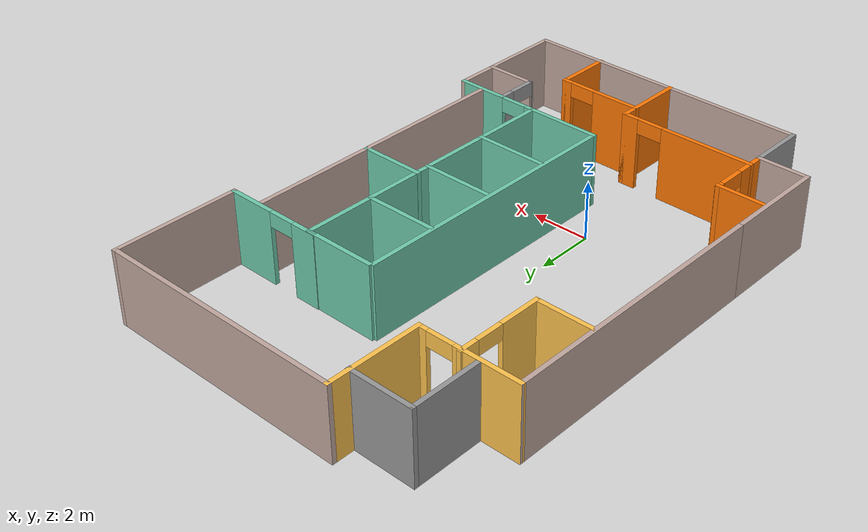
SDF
<?xml version='1.0'?>
<sdf version='1.7'>
  <model name='mybuilding'>
    <pose>0.878662 3.08042 0 0 -0 0</pose>
    <link name='Wall_123'>
      <collision name='Wall_123_Collision'>
        <geometry>
          <box>
            <size>5.25 0.15 2.5</size>
          </box>
        </geometry>
        <pose>0 0 1.25 0 -0 0</pose>
      </collision>
      <visual name='Wall_123_Visual'>
        <pose>0 0 1.25 0 -0 0</pose>
        <geometry>
          <box>
            <size>5.25 0.15 2.5</size>
          </box>
        </geometry>
        <material>
          <script>
            <uri>file://media/materials/scripts/gazebo.material</uri>
            <name>Gazebo/Grey</name>
          </script>
          <ambient>0.760784 0.662745 0.627451 1</ambient>
        </material>
        <meta>
          <layer>0</layer>
        </meta>
      </visual>
      <pose>4.79444 -2.06703 0 0 -0 1.5708</pose>
    </link>
    <link name='Wall_125'>
      <collision name='Wall_125_Collision'>
        <geometry>
          <box>
            <size>2.25 0.15 2.5</size>
          </box>
        </geometry>
        <pose>0 0 1.25 0 -0 0</pose>
      </collision>
      <visual name='Wall_125_Visual'>
        <pose>0 0 1.25 0 -0 0</pose>
        <geometry>
          <box>
            <size>2.25 0.15 2.5</size>
          </box>
        </geometry>
        <material>
          <script>
            <uri>file://media/materials/scripts/gazebo.material</uri>
            <name>Gazebo/Grey</name>
          </script>
          <ambient>0.435294 0.796078 0.67451 1</ambient>
        </material>
        <meta>
          <layer>0</layer>
        </meta>
      </visual>
      <pose>3.74444 0.482967 0 0 -0 3.14159</pose>
    </link>
    <link name='Wall_127'>
      <collision name='Wall_127_Collision'>
        <geometry>
          <box>
            <size>4.25 0.15 2.5</size>
          </box>
        </geometry>
        <pose>0 0 1.25 0 -0 0</pose>
      </collision>
      <visual name='Wall_127_Visual'>
        <pose>0 0 1.25 0 -0 0</pose>
        <geometry>
          <box>
            <size>4.25 0.15 2.5</size>
          </box>
        </geometry>
        <material>
          <script>
            <uri>file://media/materials/scripts/gazebo.material</uri>
            <name>Gazebo/Grey</name>
          </script>
          <ambient>0.760784 0.662745 0.627451 1</ambient>
        </material>
        <meta>
          <layer>0</layer>
        </meta>
      </visual>
      <pose>4.79444 2.53297 0 0 -0 1.5708</pose>
    </link>
    <link name='Wall_129'>
      <collision name='Wall_129_Collision'>
        <geometry>
          <box>
            <size>4.25 0.15 2.5</size>
          </box>
        </geometry>
        <pose>0 0 1.25 0 -0 0</pose>
      </collision>
      <visual name='Wall_129_Visual'>
        <pose>0 0 1.25 0 -0 0</pose>
        <geometry>
          <box>
            <size>4.25 0.15 2.5</size>
          </box>
        </geometry>
        <material>
          <script>
            <uri>file://media/materials/scripts/gazebo.material</uri>
            <name>Gazebo/Grey</name>
          </script>
          <ambient>0.760784 0.662745 0.627451 1</ambient>
        </material>
        <meta>
          <layer>0</layer>
        </meta>
      </visual>
      <pose>5.86525 6.78658 0 0 -0 1.5708</pose>
    </link>
    <link name='Wall_130'>
      <collision name='Wall_130_Collision'>
        <geometry>
          <box>
            <size>8.5 0.15 2.5</size>
          </box>
        </geometry>
        <pose>0 0 1.25 0 -0 0</pose>
      </collision>
      <visual name='Wall_130_Visual'>
        <pose>0 0 1.25 0 -0 0</pose>
        <geometry>
          <box>
            <size>8.5 0.15 2.5</size>
          </box>
        </geometry>
        <material>
          <script>
            <uri>file://media/materials/scripts/gazebo.material</uri>
            <name>Gazebo/Grey</name>
          </script>
          <ambient>0.760784 0.662745 0.627451 1</ambient>
        </material>
        <meta>
          <layer>0</layer>
        </meta>
      </visual>
      <pose>1.69025 8.83658 0 0 -0 3.14159</pose>
    </link>
    <link name='Wall_131'>
      <collision name='Wall_131_Collision'>
        <geometry>
          <box>
            <size>3.25 0.15 2.5</size>
          </box>
        </geometry>
        <pose>0 0 1.25 0 -0 0</pose>
      </collision>
      <visual name='Wall_131_Visual'>
        <pose>0 0 1.25 0 -0 0</pose>
        <geometry>
          <box>
            <size>3.25 0.15 2.5</size>
          </box>
        </geometry>
        <material>
          <script>
            <uri>file://media/materials/scripts/gazebo.material</uri>
            <name>Gazebo/Grey</name>
          </script>
          <ambient>1 0.764706 0.305882 1</ambient>
        </material>
        <meta>
          <layer>0</layer>
        </meta>
      </visual>
      <pose>-2.48475 7.28658 0 0 -0 -1.5708</pose>
    </link>
    <link name='Wall_136'>
      <collision name='Wall_136_Collision'>
        <geometry>
          <box>
            <size>9.49958 0.15 2.5</size>
          </box>
        </geometry>
        <pose>0 0 1.25 0 -0 0</pose>
      </collision>
      <visual name='Wall_136_Visual'>
        <pose>0 0 1.25 0 -0 0</pose>
        <geometry>
          <box>
            <size>9.49958 0.15 2.5</size>
          </box>
        </geometry>
        <material>
          <script>
            <uri>file://media/materials/scripts/gazebo.material</uri>
            <name>Gazebo/Grey</name>
          </script>
          <ambient>0.760784 0.662745 0.627451 1</ambient>
        </material>
        <meta>
          <layer>0</layer>
        </meta>
      </visual>
      <pose>-5.86518 1.06458 0 0 -0 1.5708</pose>
    </link>
    <link name='Wall_138'>
      <pose>-4.17497 5.73808 0 0 -0 3.14071</pose>
      <visual name='Wall_138_Visual_0'>
        <pose>-1.57735 0 1.25 0 -0 0</pose>
        <geometry>
          <box>
            <size>0.375734 0.15 2.5</size>
          </box>
        </geometry>
        <material>
          <script>
            <uri>file://media/materials/scripts/gazebo.material</uri>
            <name>Gazebo/Grey</name>
          </script>
          <ambient>1 0.764706 0.305882 1</ambient>
        </material>
        <meta>
          <layer>0</layer>
        </meta>
      </visual>
      <collision name='Wall_138_Collision_0'>
        <geometry>
          <box>
            <size>0.375734 0.15 2.5</size>
          </box>
        </geometry>
        <pose>-1.57735 0 1.25 0 -0 0</pose>
      </collision>
      <visual name='Wall_138_Visual_1'>
        <pose>0.637867 0 1.25 0 -0 0</pose>
        <geometry>
          <box>
            <size>2.2547 0.15 2.5</size>
          </box>
        </geometry>
        <material>
          <script>
            <uri>file://media/materials/scripts/gazebo.material</uri>
            <name>Gazebo/Grey</name>
          </script>
          <ambient>1 0.764706 0.305882 1</ambient>
        </material>
        <meta>
          <layer>0</layer>
        </meta>
      </visual>
      <collision name='Wall_138_Collision_1'>
        <geometry>
          <box>
            <size>2.2547 0.15 2.5</size>
          </box>
        </geometry>
        <pose>0.637867 0 1.25 0 -0 0</pose>
      </collision>
      <visual name='Wall_138_Visual_2'>
        <pose>-0.939484 0 2.25 0 -0 0</pose>
        <geometry>
          <box>
            <size>0.9 0.15 0.5</size>
          </box>
        </geometry>
        <material>
          <script>
            <uri>file://media/materials/scripts/gazebo.material</uri>
            <name>Gazebo/Grey</name>
          </script>
          <ambient>1 0.764706 0.305882 1</ambient>
        </material>
        <meta>
          <layer>0</layer>
        </meta>
      </visual>
      <collision name='Wall_138_Collision_2'>
        <geometry>
          <box>
            <size>0.9 0.15 0.5</size>
          </box>
        </geometry>
        <pose>-0.939484 0 2.25 0 -0 0</pose>
      </collision>
    </link>
    <link name='Wall_141'>
      <collision name='Wall_141_Collision'>
        <geometry>
          <box>
            <size>2.25 0.15 2.5</size>
          </box>
        </geometry>
        <pose>0 0 1.25 0 -0 0</pose>
      </collision>
      <visual name='Wall_141_Visual'>
        <pose>0 0 1.25 0 -0 0</pose>
        <geometry>
          <box>
            <size>2.25 0.15 2.5</size>
          </box>
        </geometry>
        <material>
          <script>
            <uri>file://media/materials/scripts/gazebo.material</uri>
            <name>Gazebo/Grey</name>
          </script>
          <ambient>1 1 1 1</ambient>
        </material>
        <meta>
          <layer>0</layer>
        </meta>
      </visual>
      <pose>-3.51661 8.10127 0 0 -0 3.14159</pose>
    </link>
    <link name='Wall_142'>
      <collision name='Wall_142_Collision'>
        <geometry>
          <box>
            <size>2.5 0.15 2.5</size>
          </box>
        </geometry>
        <pose>0 0 1.25 0 -0 0</pose>
      </collision>
      <visual name='Wall_142_Visual'>
        <pose>0 0 1.25 0 -0 0</pose>
        <geometry>
          <box>
            <size>2.5 0.15 2.5</size>
          </box>
        </geometry>
        <material>
          <script>
            <uri>file://media/materials/scripts/gazebo.material</uri>
            <name>Gazebo/Grey</name>
          </script>
          <ambient>1 1 1 1</ambient>
        </material>
        <meta>
          <layer>0</layer>
        </meta>
      </visual>
      <pose>-4.56661 6.92627 0 0 -0 -1.5708</pose>
    </link>
    <link name='Wall_144'>
      <pose>-3.95132 4.36352 0 0 -0 -1.5708</pose>
      <visual name='Wall_144_Visual_0'>
        <pose>-1.17446 0 1.25 0 -0 0</pose>
        <geometry>
          <box>
            <size>0.651089 0.15 2.5</size>
          </box>
        </geometry>
        <material>
          <script>
            <uri>file://media/materials/scripts/gazebo.material</uri>
            <name>Gazebo/Grey</name>
          </script>
          <ambient>1 0.764706 0.305882 1</ambient>
        </material>
        <meta>
          <layer>0</layer>
        </meta>
      </visual>
      <collision name='Wall_144_Collision_0'>
        <geometry>
          <box>
            <size>0.651089 0.15 2.5</size>
          </box>
        </geometry>
        <pose>-1.17446 0 1.25 0 -0 0</pose>
      </collision>
      <visual name='Wall_144_Visual_1'>
        <pose>0.775545 0 1.25 0 -0 0</pose>
        <geometry>
          <box>
            <size>1.44891 0.15 2.5</size>
          </box>
        </geometry>
        <material>
          <script>
            <uri>file://media/materials/scripts/gazebo.material</uri>
            <name>Gazebo/Grey</name>
          </script>
          <ambient>1 0.764706 0.305882 1</ambient>
        </material>
        <meta>
          <layer>0</layer>
        </meta>
      </visual>
      <collision name='Wall_144_Collision_1'>
        <geometry>
          <box>
            <size>1.44891 0.15 2.5</size>
          </box>
        </geometry>
        <pose>0.775545 0 1.25 0 -0 0</pose>
      </collision>
      <visual name='Wall_144_Visual_2'>
        <pose>-0.398911 0 2.25 0 -0 0</pose>
        <geometry>
          <box>
            <size>0.9 0.15 0.5</size>
          </box>
        </geometry>
        <material>
          <script>
            <uri>file://media/materials/scripts/gazebo.material</uri>
            <name>Gazebo/Grey</name>
          </script>
          <ambient>1 0.764706 0.305882 1</ambient>
        </material>
        <meta>
          <layer>0</layer>
        </meta>
      </visual>
      <collision name='Wall_144_Collision_2'>
        <geometry>
          <box>
            <size>0.9 0.15 0.5</size>
          </box>
        </geometry>
        <pose>-0.398911 0 2.25 0 -0 0</pose>
      </collision>
    </link>
    <link name='Wall_145'>
      <collision name='Wall_145_Collision'>
        <geometry>
          <box>
            <size>2 0.15 2.5</size>
          </box>
        </geometry>
        <pose>0 0 1.25 0 -0 0</pose>
      </collision>
      <visual name='Wall_145_Visual'>
        <pose>0 0 1.25 0 -0 0</pose>
        <geometry>
          <box>
            <size>2 0.15 2.5</size>
          </box>
        </geometry>
        <material>
          <script>
            <uri>file://media/materials/scripts/gazebo.material</uri>
            <name>Gazebo/Grey</name>
          </script>
          <ambient>1 0.764706 0.305882 1</ambient>
        </material>
        <meta>
          <layer>0</layer>
        </meta>
      </visual>
      <pose>-4.87632 2.93852 0 0 -0 3.14159</pose>
    </link>
    <link name='Wall_27'>
      <collision name='Wall_27_Collision'>
        <geometry>
          <box>
            <size>1.9915 0.15 2.5</size>
          </box>
        </geometry>
        <pose>0 0 1.25 0 -0 0</pose>
      </collision>
      <visual name='Wall_27_Visual'>
        <pose>0 0 1.25 0 -0 0</pose>
        <geometry>
          <box>
            <size>1.9915 0.15 2.5</size>
          </box>
        </geometry>
        <material>
          <script>
            <uri>file://media/materials/scripts/gazebo.material</uri>
            <name>Gazebo/Grey</name>
          </script>
          <ambient>1 1 1 1</ambient>
        </material>
        <meta>
          <layer>0</layer>
        </meta>
      </visual>
      <pose>-4.23475 -7.88117 0 0 -0 -1.5708</pose>
    </link>
    <link name='Wall_36'>
      <pose>-4.23475 -5.89742 0 0 -0 1.5708</pose>
      <visual name='Wall_36_Visual_0'>
        <pose>-0.580632 0 1.25 0 -0 0</pose>
        <geometry>
          <box>
            <size>1.11474 0.15 2.5</size>
          </box>
        </geometry>
        <material>
          <script>
            <uri>file://media/materials/scripts/gazebo.material</uri>
            <name>Gazebo/Grey</name>
          </script>
          <ambient>0.996078 0.47451 0.0196078 1</ambient>
        </material>
        <meta>
          <layer>0</layer>
        </meta>
      </visual>
      <collision name='Wall_36_Collision_0'>
        <geometry>
          <box>
            <size>1.11474 0.15 2.5</size>
          </box>
        </geometry>
        <pose>-0.580632 0 1.25 0 -0 0</pose>
      </collision>
      <visual name='Wall_36_Visual_1'>
        <pose>1.00737 0 1.25 0 -0 0</pose>
        <geometry>
          <box>
            <size>0.261265 0.15 2.5</size>
          </box>
        </geometry>
        <material>
          <script>
            <uri>file://media/materials/scripts/gazebo.material</uri>
            <name>Gazebo/Grey</name>
          </script>
          <ambient>0.996078 0.47451 0.0196078 1</ambient>
        </material>
        <meta>
          <layer>0</layer>
        </meta>
      </visual>
      <collision name='Wall_36_Collision_1'>
        <geometry>
          <box>
            <size>0.261265 0.15 2.5</size>
          </box>
        </geometry>
        <pose>1.00737 0 1.25 0 -0 0</pose>
      </collision>
      <visual name='Wall_36_Visual_2'>
        <pose>0.426735 0 2.25 0 -0 0</pose>
        <geometry>
          <box>
            <size>0.9 0.15 0.5</size>
          </box>
        </geometry>
        <material>
          <script>
            <uri>file://media/materials/scripts/gazebo.material</uri>
            <name>Gazebo/Grey</name>
          </script>
          <ambient>0.996078 0.47451 0.0196078 1</ambient>
        </material>
        <meta>
          <layer>0</layer>
        </meta>
      </visual>
      <collision name='Wall_36_Collision_2'>
        <geometry>
          <box>
            <size>0.9 0.15 0.5</size>
          </box>
        </geometry>
        <pose>0.426735 0 2.25 0 -0 0</pose>
      </collision>
    </link>
    <link name='Wall_41'>
      <collision name='Wall_41_Collision'>
        <geometry>
          <box>
            <size>1.75 0.15 2.5</size>
          </box>
        </geometry>
        <pose>0 0 1.25 0 -0 0</pose>
      </collision>
      <visual name='Wall_41_Visual'>
        <pose>0 0 1.25 0 -0 0</pose>
        <geometry>
          <box>
            <size>1.75 0.15 2.5</size>
          </box>
        </geometry>
        <material>
          <script>
            <uri>file://media/materials/scripts/gazebo.material</uri>
            <name>Gazebo/Grey</name>
          </script>
          <ambient>0.996078 0.47451 0.0196078 1</ambient>
        </material>
        <meta>
          <layer>0</layer>
        </meta>
      </visual>
      <pose>-5.02325 -4.83442 0 0 -0 3.14159</pose>
    </link>
    <link name='Wall_43'>
      <collision name='Wall_43_Collision'>
        <geometry>
          <box>
            <size>10 0.15 2.5</size>
          </box>
        </geometry>
        <pose>0 0 1.25 0 -0 0</pose>
      </collision>
      <visual name='Wall_43_Visual'>
        <pose>0 0 1.25 0 -0 0</pose>
        <geometry>
          <box>
            <size>10 0.15 2.5</size>
          </box>
        </geometry>
        <material>
          <script>
            <uri>file://media/materials/scripts/gazebo.material</uri>
            <name>Gazebo/Grey</name>
          </script>
          <ambient>0.760784 0.662745 0.627451 1</ambient>
        </material>
        <meta>
          <layer>0</layer>
        </meta>
      </visual>
      <pose>0.690251 -8.81342 0 0 -0 0</pose>
    </link>
    <link name='Wall_47'>
      <pose>-1.93659 -6.46908 0 0 -0 0</pose>
      <visual name='Wall_47_Visual_0'>
        <pose>-0.7455 0 1.25 0 -0 0</pose>
        <geometry>
          <box>
            <size>3.259 0.15 2.5</size>
          </box>
        </geometry>
        <material>
          <script>
            <uri>file://media/materials/scripts/gazebo.material</uri>
            <name>Gazebo/Grey</name>
          </script>
          <ambient>0.996078 0.47451 0.0196078 1</ambient>
        </material>
        <meta>
          <layer>0</layer>
        </meta>
      </visual>
      <collision name='Wall_47_Collision_0'>
        <geometry>
          <box>
            <size>3.259 0.15 2.5</size>
          </box>
        </geometry>
        <pose>-0.7455 0 1.25 0 -0 0</pose>
      </collision>
      <visual name='Wall_47_Visual_1'>
        <pose>2.0795 0 1.25 0 -0 0</pose>
        <geometry>
          <box>
            <size>0.591 0.15 2.5</size>
          </box>
        </geometry>
        <material>
          <script>
            <uri>file://media/materials/scripts/gazebo.material</uri>
            <name>Gazebo/Grey</name>
          </script>
          <ambient>0.996078 0.47451 0.0196078 1</ambient>
        </material>
        <meta>
          <layer>0</layer>
        </meta>
      </visual>
      <collision name='Wall_47_Collision_1'>
        <geometry>
          <box>
            <size>0.591 0.15 2.5</size>
          </box>
        </geometry>
        <pose>2.0795 0 1.25 0 -0 0</pose>
      </collision>
      <visual name='Wall_47_Visual_2'>
        <pose>1.334 0 2.25 0 -0 0</pose>
        <geometry>
          <box>
            <size>0.9 0.15 0.5</size>
          </box>
        </geometry>
        <material>
          <script>
            <uri>file://media/materials/scripts/gazebo.material</uri>
            <name>Gazebo/Grey</name>
          </script>
          <ambient>0.996078 0.47451 0.0196078 1</ambient>
        </material>
        <meta>
          <layer>0</layer>
        </meta>
      </visual>
      <collision name='Wall_47_Collision_2'>
        <geometry>
          <box>
            <size>0.9 0.15 0.5</size>
          </box>
        </geometry>
        <pose>1.334 0 2.25 0 -0 0</pose>
      </collision>
    </link>
    <link name='Wall_48'>
      <collision name='Wall_48_Collision'>
        <geometry>
          <box>
            <size>2.5 0.15 2.5</size>
          </box>
        </geometry>
        <pose>0 0 1.25 0 -0 0</pose>
      </collision>
      <visual name='Wall_48_Visual'>
        <pose>0 0 1.25 0 -0 0</pose>
        <geometry>
          <box>
            <size>2.5 0.15 2.5</size>
          </box>
        </geometry>
        <material>
          <script>
            <uri>file://media/materials/scripts/gazebo.material</uri>
            <name>Gazebo/Grey</name>
          </script>
          <ambient>0.996078 0.47451 0.0196078 1</ambient>
        </material>
        <meta>
          <layer>0</layer>
        </meta>
      </visual>
      <pose>0.36341 -7.64408 0 0 -0 -1.5708</pose>
    </link>
    <link name='Wall_52'>
      <pose>1.78841 -6.98658 0 0 -0 0</pose>
      <visual name='Wall_52_Visual_0'>
        <pose>-0.63525 0 1.25 0 -0 0</pose>
        <geometry>
          <box>
            <size>1.7295 0.15 2.5</size>
          </box>
        </geometry>
        <material>
          <script>
            <uri>file://media/materials/scripts/gazebo.material</uri>
            <name>Gazebo/Grey</name>
          </script>
          <ambient>0.996078 0.47451 0.0196078 1</ambient>
        </material>
        <meta>
          <layer>0</layer>
        </meta>
      </visual>
      <collision name='Wall_52_Collision_0'>
        <geometry>
          <box>
            <size>1.7295 0.15 2.5</size>
          </box>
        </geometry>
        <pose>-0.63525 0 1.25 0 -0 0</pose>
      </collision>
      <visual name='Wall_52_Visual_1'>
        <pose>1.31475 0 1.25 0 -0 0</pose>
        <geometry>
          <box>
            <size>0.3705 0.15 2.5</size>
          </box>
        </geometry>
        <material>
          <script>
            <uri>file://media/materials/scripts/gazebo.material</uri>
            <name>Gazebo/Grey</name>
          </script>
          <ambient>0.996078 0.47451 0.0196078 1</ambient>
        </material>
        <meta>
          <layer>0</layer>
        </meta>
      </visual>
      <collision name='Wall_52_Collision_1'>
        <geometry>
          <box>
            <size>0.3705 0.15 2.5</size>
          </box>
        </geometry>
        <pose>1.31475 0 1.25 0 -0 0</pose>
      </collision>
      <visual name='Wall_52_Visual_2'>
        <pose>0.6795 0 2.25 0 -0 0</pose>
        <geometry>
          <box>
            <size>0.9 0.15 0.5</size>
          </box>
        </geometry>
        <material>
          <script>
            <uri>file://media/materials/scripts/gazebo.material</uri>
            <name>Gazebo/Grey</name>
          </script>
          <ambient>0.996078 0.47451 0.0196078 1</ambient>
        </material>
        <meta>
          <layer>0</layer>
        </meta>
      </visual>
      <collision name='Wall_52_Collision_2'>
        <geometry>
          <box>
            <size>0.9 0.15 0.5</size>
          </box>
        </geometry>
        <pose>0.6795 0 2.25 0 -0 0</pose>
      </collision>
    </link>
    <link name='Wall_53'>
      <collision name='Wall_53_Collision'>
        <geometry>
          <box>
            <size>2 0.15 2.5</size>
          </box>
        </geometry>
        <pose>0 0 1.25 0 -0 0</pose>
      </collision>
      <visual name='Wall_53_Visual'>
        <pose>0 0 1.25 0 -0 0</pose>
        <geometry>
          <box>
            <size>2 0.15 2.5</size>
          </box>
        </geometry>
        <material>
          <script>
            <uri>file://media/materials/scripts/gazebo.material</uri>
            <name>Gazebo/Grey</name>
          </script>
          <ambient>0.996078 0.47451 0.0196078 1</ambient>
        </material>
        <meta>
          <layer>0</layer>
        </meta>
      </visual>
      <pose>3.21341 -7.91158 0 0 -0 -1.5708</pose>
    </link>
    <link name='Wall_55'>
      <collision name='Wall_55_Collision'>
        <geometry>
          <box>
            <size>4.25 0.15 2.5</size>
          </box>
        </geometry>
        <pose>0 0 1.25 0 -0 0</pose>
      </collision>
      <visual name='Wall_55_Visual'>
        <pose>0 0 1.25 0 -0 0</pose>
        <geometry>
          <box>
            <size>4.25 0.15 2.5</size>
          </box>
        </geometry>
        <material>
          <script>
            <uri>file://media/materials/scripts/gazebo.material</uri>
            <name>Gazebo/Grey</name>
          </script>
          <ambient>0.760784 0.662745 0.627451 1</ambient>
        </material>
        <meta>
          <layer>0</layer>
        </meta>
      </visual>
      <pose>5.61525 -6.76342 0 0 -0 1.5708</pose>
    </link>
    <link name='Wall_56'>
      <pose>2.94025 -4.71342 0 0 -0 3.14159</pose>
      <visual name='Wall_56_Visual_0'>
        <pose>-1.85364 0 1.25 0 -0 0</pose>
        <geometry>
          <box>
            <size>1.79272 0.15 2.5</size>
          </box>
        </geometry>
        <material>
          <script>
            <uri>file://media/materials/scripts/gazebo.material</uri>
            <name>Gazebo/Grey</name>
          </script>
          <ambient>0.435294 0.796078 0.67451 1</ambient>
        </material>
        <meta>
          <layer>0</layer>
        </meta>
      </visual>
      <collision name='Wall_56_Collision_0'>
        <geometry>
          <box>
            <size>1.79272 0.15 2.5</size>
          </box>
        </geometry>
        <pose>-1.85364 0 1.25 0 -0 0</pose>
      </collision>
      <visual name='Wall_56_Visual_1'>
        <pose>1.34636 0 1.25 0 -0 0</pose>
        <geometry>
          <box>
            <size>2.80728 0.15 2.5</size>
          </box>
        </geometry>
        <material>
          <script>
            <uri>file://media/materials/scripts/gazebo.material</uri>
            <name>Gazebo/Grey</name>
          </script>
          <ambient>0.435294 0.796078 0.67451 1</ambient>
        </material>
        <meta>
          <layer>0</layer>
        </meta>
      </visual>
      <collision name='Wall_56_Collision_1'>
        <geometry>
          <box>
            <size>2.80728 0.15 2.5</size>
          </box>
        </geometry>
        <pose>1.34636 0 1.25 0 -0 0</pose>
      </collision>
      <visual name='Wall_56_Visual_2'>
        <pose>-0.507283 0 2.25 0 -0 0</pose>
        <geometry>
          <box>
            <size>0.9 0.15 0.5</size>
          </box>
        </geometry>
        <material>
          <script>
            <uri>file://media/materials/scripts/gazebo.material</uri>
            <name>Gazebo/Grey</name>
          </script>
          <ambient>0.435294 0.796078 0.67451 1</ambient>
        </material>
        <meta>
          <layer>0</layer>
        </meta>
      </visual>
      <collision name='Wall_56_Collision_2'>
        <geometry>
          <box>
            <size>0.9 0.15 0.5</size>
          </box>
        </geometry>
        <pose>-0.507283 0 2.25 0 -0 0</pose>
      </collision>
    </link>
    <link name='Wall_58'>
      <collision name='Wall_58_Collision'>
        <geometry>
          <box>
            <size>1.75 0.15 2.5</size>
          </box>
        </geometry>
        <pose>0 0 1.25 0 -0 0</pose>
      </collision>
      <visual name='Wall_58_Visual'>
        <pose>0 0 1.25 0 -0 0</pose>
        <geometry>
          <box>
            <size>1.75 0.15 2.5</size>
          </box>
        </geometry>
        <material>
          <script>
            <uri>file://media/materials/scripts/gazebo.material</uri>
            <name>Gazebo/Grey</name>
          </script>
          <ambient>0.760784 0.662745 0.627451 1</ambient>
        </material>
        <meta>
          <layer>0</layer>
        </meta>
      </visual>
      <pose>4.79591 -6.07808 0 0 -0 3.14159</pose>
    </link>
    <link name='Wall_59'>
      <pose>3.98441 -5.40308 0 0 -0 1.5708</pose>
      <visual name='Wall_59_Visual_0'>
        <pose>-0.719 0 1.25 0 -0 0</pose>
        <geometry>
          <box>
            <size>0.062 0.15 2.5</size>
          </box>
        </geometry>
        <material>
          <script>
            <uri>file://media/materials/scripts/gazebo.material</uri>
            <name>Gazebo/Grey</name>
          </script>
          <ambient>1 1 1 1</ambient>
        </material>
        <meta>
          <layer>0</layer>
        </meta>
      </visual>
      <collision name='Wall_59_Collision_0'>
        <geometry>
          <box>
            <size>0.062 0.15 2.5</size>
          </box>
        </geometry>
        <pose>-0.719 0 1.25 0 -0 0</pose>
      </collision>
      <visual name='Wall_59_Visual_1'>
        <pose>0.481 0 1.25 0 -0 0</pose>
        <geometry>
          <box>
            <size>0.538 0.15 2.5</size>
          </box>
        </geometry>
        <material>
          <script>
            <uri>file://media/materials/scripts/gazebo.material</uri>
            <name>Gazebo/Grey</name>
          </script>
          <ambient>1 1 1 1</ambient>
        </material>
        <meta>
          <layer>0</layer>
        </meta>
      </visual>
      <collision name='Wall_59_Collision_1'>
        <geometry>
          <box>
            <size>0.538 0.15 2.5</size>
          </box>
        </geometry>
        <pose>0.481 0 1.25 0 -0 0</pose>
      </collision>
      <visual name='Wall_59_Visual_2'>
        <pose>-0.238 0 2.25 0 -0 0</pose>
        <geometry>
          <box>
            <size>0.9 0.15 0.5</size>
          </box>
        </geometry>
        <material>
          <script>
            <uri>file://media/materials/scripts/gazebo.material</uri>
            <name>Gazebo/Grey</name>
          </script>
          <ambient>1 1 1 1</ambient>
        </material>
        <meta>
          <layer>0</layer>
        </meta>
      </visual>
      <collision name='Wall_59_Collision_2'>
        <geometry>
          <box>
            <size>0.9 0.15 0.5</size>
          </box>
        </geometry>
        <pose>-0.238 0 2.25 0 -0 0</pose>
      </collision>
    </link>
    <link name='Wall_6'>
      <collision name='Wall_6_Collision'>
        <geometry>
          <box>
            <size>3.5 0.15 2.5</size>
          </box>
        </geometry>
        <pose>0 0 1.25 0 -0 0</pose>
      </collision>
      <visual name='Wall_6_Visual'>
        <pose>0 0 1.25 0 -0 0</pose>
        <geometry>
          <box>
            <size>3.5 0.15 2.5</size>
          </box>
        </geometry>
        <material>
          <script>
            <uri>file://media/materials/scripts/gazebo.material</uri>
            <name>Gazebo/Grey</name>
          </script>
          <ambient>0.760784 0.662745 0.627451 1</ambient>
        </material>
        <meta>
          <layer>0</layer>
        </meta>
      </visual>
      <pose>-5.86518 -5.28542 0 0 -0 -1.5708</pose>
    </link>
    <link name='Wall_73'>
      <collision name='Wall_73_Collision'>
        <geometry>
          <box>
            <size>2.5 0.15 2.5</size>
          </box>
        </geometry>
        <pose>0 0 1.25 0 -0 0</pose>
      </collision>
      <visual name='Wall_73_Visual'>
        <pose>0 0 1.25 0 -0 0</pose>
        <geometry>
          <box>
            <size>2.5 0.15 2.5</size>
          </box>
        </geometry>
        <material>
          <script>
            <uri>file://media/materials/scripts/gazebo.material</uri>
            <name>Gazebo/Grey</name>
          </script>
          <ambient>0.435294 0.796078 0.67451 1</ambient>
        </material>
        <meta>
          <layer>0</layer>
        </meta>
      </visual>
      <pose>2.70558 -3.51332 0 0 -0 1.5708</pose>
    </link>
    <link name='Wall_74'>
      <collision name='Wall_74_Collision'>
        <geometry>
          <box>
            <size>2.5 0.15 2.5</size>
          </box>
        </geometry>
        <pose>0 0 1.25 0 -0 0</pose>
      </collision>
      <visual name='Wall_74_Visual'>
        <pose>0 0 1.25 0 -0 0</pose>
        <geometry>
          <box>
            <size>2.5 0.15 2.5</size>
          </box>
        </geometry>
        <material>
          <script>
            <uri>file://media/materials/scripts/gazebo.material</uri>
            <name>Gazebo/Grey</name>
          </script>
          <ambient>0.435294 0.796078 0.67451 1</ambient>
        </material>
        <meta>
          <layer>0</layer>
        </meta>
      </visual>
      <pose>1.53058 -2.33832 0 0 -0 3.14159</pose>
    </link>
    <link name='Wall_76'>
      <collision name='Wall_76_Collision'>
        <geometry>
          <box>
            <size>2.5 0.15 2.5</size>
          </box>
        </geometry>
        <pose>0 0 1.25 0 -0 0</pose>
      </collision>
      <visual name='Wall_76_Visual'>
        <pose>0 0 1.25 0 -0 0</pose>
        <geometry>
          <box>
            <size>2.5 0.15 2.5</size>
          </box>
        </geometry>
        <material>
          <script>
            <uri>file://media/materials/scripts/gazebo.material</uri>
            <name>Gazebo/Grey</name>
          </script>
          <ambient>0.435294 0.796078 0.67451 1</ambient>
        </material>
        <meta>
          <layer>0</layer>
        </meta>
      </visual>
      <pose>2.70558 -1.16332 0 0 -0 1.5708</pose>
    </link>
    <link name='Wall_77'>
      <collision name='Wall_77_Collision'>
        <geometry>
          <box>
            <size>2.5 0.15 2.5</size>
          </box>
        </geometry>
        <pose>0 0 1.25 0 -0 0</pose>
      </collision>
      <visual name='Wall_77_Visual'>
        <pose>0 0 1.25 0 -0 0</pose>
        <geometry>
          <box>
            <size>2.5 0.15 2.5</size>
          </box>
        </geometry>
        <material>
          <script>
            <uri>file://media/materials/scripts/gazebo.material</uri>
            <name>Gazebo/Grey</name>
          </script>
          <ambient>0.435294 0.796078 0.67451 1</ambient>
        </material>
        <meta>
          <layer>0</layer>
        </meta>
      </visual>
      <pose>1.53058 0.011678 0 0 -0 3.14159</pose>
    </link>
    <link name='Wall_79'>
      <collision name='Wall_79_Collision'>
        <geometry>
          <box>
            <size>2.5 0.15 2.5</size>
          </box>
        </geometry>
        <pose>0 0 1.25 0 -0 0</pose>
      </collision>
      <visual name='Wall_79_Visual'>
        <pose>0 0 1.25 0 -0 0</pose>
        <geometry>
          <box>
            <size>2.5 0.15 2.5</size>
          </box>
        </geometry>
        <material>
          <script>
            <uri>file://media/materials/scripts/gazebo.material</uri>
            <name>Gazebo/Grey</name>
          </script>
          <ambient>0.435294 0.796078 0.67451 1</ambient>
        </material>
        <meta>
          <layer>0</layer>
        </meta>
      </visual>
      <pose>2.70558 1.18668 0 0 -0 1.5708</pose>
    </link>
    <link name='Wall_8'>
      <collision name='Wall_8_Collision'>
        <geometry>
          <box>
            <size>1.78043 0.15 2.5</size>
          </box>
        </geometry>
        <pose>0 0 1.25 0 -0 0</pose>
      </collision>
      <visual name='Wall_8_Visual'>
        <pose>0 0 1.25 0 -0 0</pose>
        <geometry>
          <box>
            <size>1.78043 0.15 2.5</size>
          </box>
        </geometry>
        <material>
          <script>
            <uri>file://media/materials/scripts/gazebo.material</uri>
            <name>Gazebo/Grey</name>
          </script>
          <ambient>0.760784 0.662745 0.627451 1</ambient>
        </material>
        <meta>
          <layer>0</layer>
        </meta>
      </visual>
      <pose>-5.04127 -6.96042 0 0 -0 0</pose>
    </link>
    <link name='Wall_82'>
      <collision name='Wall_82_Collision'>
        <geometry>
          <box>
            <size>2.5 0.15 2.5</size>
          </box>
        </geometry>
        <pose>0 0 1.25 0 -0 0</pose>
      </collision>
      <visual name='Wall_82_Visual'>
        <pose>0 0 1.25 0 -0 0</pose>
        <geometry>
          <box>
            <size>2.5 0.15 2.5</size>
          </box>
        </geometry>
        <material>
          <script>
            <uri>file://media/materials/scripts/gazebo.material</uri>
            <name>Gazebo/Grey</name>
          </script>
          <ambient>0.435294 0.796078 0.67451 1</ambient>
        </material>
        <meta>
          <layer>0</layer>
        </meta>
      </visual>
      <pose>1.53058 2.36168 0 0 -0 3.14159</pose>
    </link>
    <link name='Wall_85'>
      <collision name='Wall_85_Collision'>
        <geometry>
          <box>
            <size>2.5 0.15 2.5</size>
          </box>
        </geometry>
        <pose>0 0 1.25 0 -0 0</pose>
      </collision>
      <visual name='Wall_85_Visual'>
        <pose>0 0 1.25 0 -0 0</pose>
        <geometry>
          <box>
            <size>2.5 0.15 2.5</size>
          </box>
        </geometry>
        <material>
          <script>
            <uri>file://media/materials/scripts/gazebo.material</uri>
            <name>Gazebo/Grey</name>
          </script>
          <ambient>0.435294 0.796078 0.67451 1</ambient>
        </material>
        <meta>
          <layer>0</layer>
        </meta>
      </visual>
      <pose>2.70558 3.53668 0 0 -0 1.5708</pose>
    </link>
    <link name='Wall_86'>
      <collision name='Wall_86_Collision'>
        <geometry>
          <box>
            <size>2.5 0.15 2.5</size>
          </box>
        </geometry>
        <pose>0 0 1.25 0 -0 0</pose>
      </collision>
      <visual name='Wall_86_Visual'>
        <pose>0 0 1.25 0 -0 0</pose>
        <geometry>
          <box>
            <size>2.5 0.15 2.5</size>
          </box>
        </geometry>
        <material>
          <script>
            <uri>file://media/materials/scripts/gazebo.material</uri>
            <name>Gazebo/Grey</name>
          </script>
          <ambient>0.435294 0.796078 0.67451 1</ambient>
        </material>
        <meta>
          <layer>0</layer>
        </meta>
      </visual>
      <pose>1.53058 4.71168 0 0 -0 3.14159</pose>
    </link>
    <link name='Wall_88'>
      <collision name='Wall_88_Collision'>
        <geometry>
          <box>
            <size>9.5 0.15 2.5</size>
          </box>
        </geometry>
        <pose>0 0 1.25 0 -0 0</pose>
      </collision>
      <visual name='Wall_88_Visual'>
        <pose>0 0 1.25 0 -0 0</pose>
        <geometry>
          <box>
            <size>9.5 0.15 2.5</size>
          </box>
        </geometry>
        <material>
          <script>
            <uri>file://media/materials/scripts/gazebo.material</uri>
            <name>Gazebo/Grey</name>
          </script>
          <ambient>0.435294 0.796078 0.67451 1</ambient>
        </material>
        <meta>
          <layer>0</layer>
        </meta>
      </visual>
      <pose>0.265251 -0.038418 0 0 -0 1.5708</pose>
    </link>
    <link name='Wall_93'>
      <pose>4.19025 4.73658 0 0 -0 3.14159</pose>
      <visual name='Wall_93_Visual_0'>
        <pose>-0.901489 0 1.25 0 -0 0</pose>
        <geometry>
          <box>
            <size>1.69702 0.15 2.5</size>
          </box>
        </geometry>
        <material>
          <script>
            <uri>file://media/materials/scripts/gazebo.material</uri>
            <name>Gazebo/Grey</name>
          </script>
          <ambient>0.435294 0.796078 0.67451 1</ambient>
        </material>
        <meta>
          <layer>0</layer>
        </meta>
      </visual>
      <collision name='Wall_93_Collision_0'>
        <geometry>
          <box>
            <size>1.69702 0.15 2.5</size>
          </box>
        </geometry>
        <pose>-0.901489 0 1.25 0 -0 0</pose>
      </collision>
      <visual name='Wall_93_Visual_1'>
        <pose>1.29851 0 1.25 0 -0 0</pose>
        <geometry>
          <box>
            <size>0.902978 0.15 2.5</size>
          </box>
        </geometry>
        <material>
          <script>
            <uri>file://media/materials/scripts/gazebo.material</uri>
            <name>Gazebo/Grey</name>
          </script>
          <ambient>0.435294 0.796078 0.67451 1</ambient>
        </material>
        <meta>
          <layer>0</layer>
        </meta>
      </visual>
      <collision name='Wall_93_Collision_1'>
        <geometry>
          <box>
            <size>0.902978 0.15 2.5</size>
          </box>
        </geometry>
        <pose>1.29851 0 1.25 0 -0 0</pose>
      </collision>
      <visual name='Wall_93_Visual_2'>
        <pose>0.397022 0 2.25 0 -0 0</pose>
        <geometry>
          <box>
            <size>0.9 0.15 0.5</size>
          </box>
        </geometry>
        <material>
          <script>
            <uri>file://media/materials/scripts/gazebo.material</uri>
            <name>Gazebo/Grey</name>
          </script>
          <ambient>0.435294 0.796078 0.67451 1</ambient>
        </material>
        <meta>
          <layer>0</layer>
        </meta>
      </visual>
      <collision name='Wall_93_Collision_2'>
        <geometry>
          <box>
            <size>0.9 0.15 0.5</size>
          </box>
        </geometry>
        <pose>0.397022 0 2.25 0 -0 0</pose>
      </collision>
    </link>
    <static>1</static>
  </model>
</sdf>
